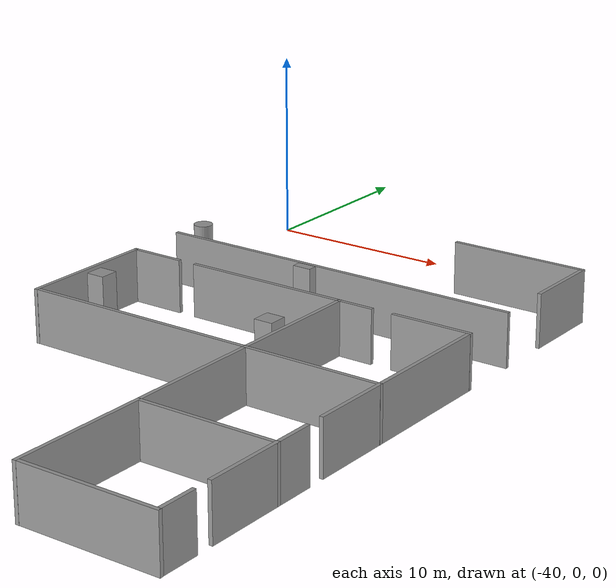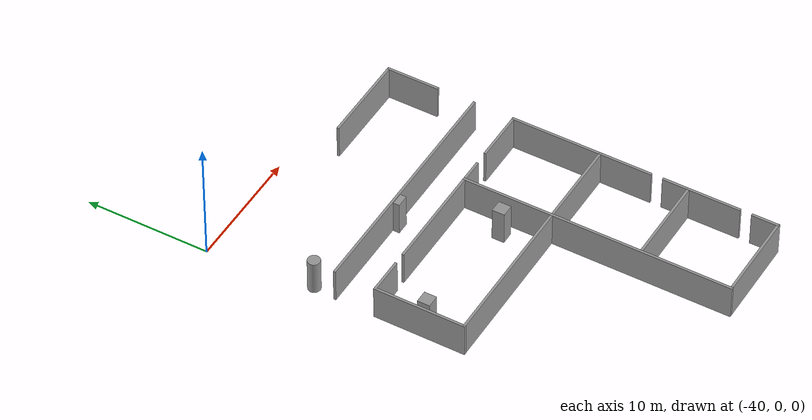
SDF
<sdf version="1.6">
 <world name="default">
  <model name="g1_clone_1_0_clone_0_0_0_clone_clone_0">
   <link name="link">
    <pose>6.64359 0.252719 1.4 0 -0 0</pose>
    <inertial>
     <mass>1</mass>
     <inertia><ixx>1</ixx><ixy>0</ixy><ixz>0</ixz><iyy>1</iyy><iyz>0</iyz><izz>1</izz></inertia>
    </inertial>
    <visual name="visual">
     <cast_shadows>0</cast_shadows>
     <geometry><box><size>20 0.2 2.8</size></box></geometry>
     <material>
      <script>
       <uri>model://grey_wall/materials/scripts</uri>
       <uri>model://grey_wall/materials/textures</uri>
       <name>vrc/grey_wall</name>
      </script>
      <ambient>1 1 1 1</ambient>
      <diffuse>1 1 1 1</diffuse>
      <specular>0 0 0 1</specular>
      <emissive>0 0 0 1</emissive>
      <shader type="vertex"><normal_map>__default__</normal_map></shader>
     </material>
    </visual>
    <collision name="collision">
     <geometry><box><size>20 0.2 2.8</size></box></geometry>
     <surface>
      <friction>
       <ode><mu>1</mu><mu2>1</mu2><fdir1>0 0 0</fdir1><slip1>0</slip1><slip2>0</slip2></ode>
       <torsional>
        <coefficient>1</coefficient>
        <patch_radius>0</patch_radius>
        <surface_radius>0</surface_radius>
        <use_patch_radius>1</use_patch_radius>
        <ode><slip>0</slip></ode>
       </torsional>
      </friction>
      <bounce><restitution_coefficient>0</restitution_coefficient><threshold>1e+06</threshold></bounce>
      <contact>
       <collide_without_contact>0</collide_without_contact>
       <collide_without_contact_bitmask>1</collide_without_contact_bitmask>
       <collide_bitmask>1</collide_bitmask>
       <ode>
        <soft_cfm>0</soft_cfm>
        <soft_erp>0.2</soft_erp>
        <kp>1e+13</kp>
        <kd>1</kd>
        <max_vel>0.01</max_vel>
        <min_depth>0</min_depth>
       </ode>
       <bullet>
        <split_impulse>1</split_impulse>
        <split_impulse_penetration_threshold>-0.01</split_impulse_penetration_threshold>
        <soft_cfm>0</soft_cfm>
        <soft_erp>0.2</soft_erp>
        <kp>1e+13</kp>
        <kd>1</kd>
       </bullet>
      </contact>
     </surface>
    </collision>
   </link>
   <static>1</static>
   <pose>-36.142 -10.5884 0 0 -0 0.000774</pose>
  </model>
  <model name="grey_wall_0_0_clone_clone">
   <link name="link">
    <pose>0 0 1.4 0 -0 0</pose>
    <inertial>
     <mass>1</mass>
     <inertia><ixx>1</ixx><ixy>0</ixy><ixz>0</ixz><iyy>1</iyy><iyz>0</iyz><izz>1</izz></inertia>
    </inertial>
    <visual name="visual">
     <cast_shadows>0</cast_shadows>
     <geometry><box><size>7.4 0.2 2.8</size></box></geometry>
     <material>
      <script>
       <uri>model://grey_wall/materials/scripts</uri>
       <uri>model://grey_wall/materials/textures</uri>
       <name>vrc/grey_wall</name>
      </script>
      <ambient>1 1 1 1</ambient>
      <diffuse>1 1 1 1</diffuse>
      <specular>0 0 0 1</specular>
      <emissive>0 0 0 1</emissive>
      <shader type="vertex"><normal_map>__default__</normal_map></shader>
     </material>
    </visual>
    <collision name="collision">
     <geometry><box><size>7.4 0.2 2.8</size></box></geometry>
     <surface>
      <friction>
       <ode><mu>1</mu><mu2>1</mu2><fdir1>0 0 0</fdir1><slip1>0</slip1><slip2>0</slip2></ode>
       <torsional>
        <coefficient>1</coefficient>
        <patch_radius>0</patch_radius>
        <surface_radius>0</surface_radius>
        <use_patch_radius>1</use_patch_radius>
        <ode><slip>0</slip></ode>
       </torsional>
      </friction>
      <bounce><restitution_coefficient>0</restitution_coefficient><threshold>1e+06</threshold></bounce>
      <contact>
       <collide_without_contact>0</collide_without_contact>
       <collide_without_contact_bitmask>1</collide_without_contact_bitmask>
       <collide_bitmask>1</collide_bitmask>
       <ode>
        <soft_cfm>0</soft_cfm>
        <soft_erp>0.2</soft_erp>
        <kp>1e+13</kp>
        <kd>1</kd>
        <max_vel>0.01</max_vel>
        <min_depth>0</min_depth>
       </ode>
       <bullet>
        <split_impulse>1</split_impulse>
        <split_impulse_penetration_threshold>-0.01</split_impulse_penetration_threshold>
        <soft_cfm>0</soft_cfm>
        <soft_erp>0.2</soft_erp>
        <kp>1e+13</kp>
        <kd>1</kd>
       </bullet>
      </contact>
     </surface>
    </collision>
   </link>
   <static>1</static>
   <pose>-23.1689 -3.11686 0 0 -0 0</pose>
  </model>
  <model name="g3_clone_clone_0_0_0_0_0_clone_0_clone_0_clone_2_clone_0_clone_0_clone_1_clone_clone">
   <link name="link">
    <pose>0.7232 0.251992 1.4 0 -0 0</pose>
    <inertial>
     <mass>1</mass>
     <inertia><ixx>1</ixx><ixy>0</ixy><ixz>0</ixz><iyy>1</iyy><iyz>0</iyz><izz>1</izz></inertia>
    </inertial>
    <visual name="visual">
     <cast_shadows>0</cast_shadows>
     <geometry><box><size>4.3 0.2 2.8</size></box></geometry>
     <material>
      <script>
       <uri>model://grey_wall/materials/scripts</uri>
       <uri>model://grey_wall/materials/textures</uri>
       <name>vrc/grey_wall</name>
      </script>
      <ambient>1 1 1 1</ambient>
      <diffuse>1 1 1 1</diffuse>
      <specular>0 0 0 1</specular>
      <emissive>0 0 0 1</emissive>
      <shader type="vertex"><normal_map>__default__</normal_map></shader>
     </material>
    </visual>
    <collision name="collision">
     <geometry><box><size>4.3 0.2 2.8</size></box></geometry>
     <surface>
      <friction>
       <ode><mu>1</mu><mu2>1</mu2><fdir1>0 0 0</fdir1><slip1>0</slip1><slip2>0</slip2></ode>
       <torsional>
        <coefficient>1</coefficient>
        <patch_radius>0</patch_radius>
        <surface_radius>0</surface_radius>
        <use_patch_radius>1</use_patch_radius>
        <ode><slip>0</slip></ode>
       </torsional>
      </friction>
      <bounce><restitution_coefficient>0</restitution_coefficient><threshold>1e+06</threshold></bounce>
      <contact>
       <collide_without_contact>0</collide_without_contact>
       <collide_without_contact_bitmask>1</collide_without_contact_bitmask>
       <collide_bitmask>1</collide_bitmask>
       <ode>
        <soft_cfm>0</soft_cfm>
        <soft_erp>0.2</soft_erp>
        <kp>1e+13</kp>
        <kd>1</kd>
        <max_vel>0.01</max_vel>
        <min_depth>0</min_depth>
       </ode>
       <bullet>
        <split_impulse>1</split_impulse>
        <split_impulse_penetration_threshold>-0.01</split_impulse_penetration_threshold>
        <soft_cfm>0</soft_cfm>
        <soft_erp>0.2</soft_erp>
        <kp>1e+13</kp>
        <kd>1</kd>
       </bullet>
      </contact>
     </surface>
    </collision>
   </link>
   <static>1</static>
   <pose>-19.8268 -4.45025 0 0 0 -1.57728</pose>
  </model>
  <model name="g2_clone_0_0_clone_clone_clone_0_clone">
   <link name="link">
    <pose>0 0 1.4 0 -0 0</pose>
    <inertial>
     <mass>1</mass>
     <inertia><ixx>1</ixx><ixy>0</ixy><ixz>0</ixz><iyy>1</iyy><iyz>0</iyz><izz>1</izz></inertia>
    </inertial>
    <visual name="visual">
     <cast_shadows>0</cast_shadows>
     <geometry><box><size>21.8 0.2 2.8</size></box></geometry>
     <material>
      <script>
       <uri>model://grey_wall/materials/scripts</uri>
       <uri>model://grey_wall/materials/textures</uri>
       <name>vrc/grey_wall</name>
      </script>
      <ambient>1 1 1 1</ambient>
      <diffuse>1 1 1 1</diffuse>
      <specular>0 0 0 1</specular>
      <emissive>0 0 0 1</emissive>
      <shader type="vertex"><normal_map>__default__</normal_map></shader>
     </material>
    </visual>
    <collision name="collision">
     <geometry><box><size>21.8 0.2 2.8</size></box></geometry>
     <surface>
      <friction>
       <ode><mu>1</mu><mu2>1</mu2><fdir1>0 0 0</fdir1><slip1>0</slip1><slip2>0</slip2></ode>
       <torsional>
        <coefficient>1</coefficient>
        <patch_radius>0</patch_radius>
        <surface_radius>0</surface_radius>
        <use_patch_radius>1</use_patch_radius>
        <ode><slip>0</slip></ode>
       </torsional>
      </friction>
      <bounce><restitution_coefficient>0</restitution_coefficient><threshold>1e+06</threshold></bounce>
      <contact>
       <collide_without_contact>0</collide_without_contact>
       <collide_without_contact_bitmask>1</collide_without_contact_bitmask>
       <collide_bitmask>1</collide_bitmask>
       <ode>
        <soft_cfm>0</soft_cfm>
        <soft_erp>0.2</soft_erp>
        <kp>1e+13</kp>
        <kd>1</kd>
        <max_vel>0.01</max_vel>
        <min_depth>0</min_depth>
       </ode>
       <bullet>
        <split_impulse>1</split_impulse>
        <split_impulse_penetration_threshold>-0.01</split_impulse_penetration_threshold>
        <soft_cfm>0</soft_cfm>
        <soft_erp>0.2</soft_erp>
        <kp>1e+13</kp>
        <kd>1</kd>
       </bullet>
      </contact>
     </surface>
    </collision>
   </link>
   <static>1</static>
   <pose>-26.8722 -24.4388 0 0 0 -1.57584</pose>
  </model>
  <model name="grey_wall_0_0_clone_clone_0">
   <link name="link">
    <pose>0 0 1.4 0 -0 0</pose>
    <inertial>
     <mass>1</mass>
     <inertia><ixx>1</ixx><ixy>0</ixy><ixz>0</ixz><iyy>1</iyy><iyz>0</iyz><izz>1</izz></inertia>
    </inertial>
    <visual name="visual">
     <cast_shadows>0</cast_shadows>
     <geometry><box><size>7.4 0.2 2.8</size></box></geometry>
     <material>
      <script>
       <uri>model://grey_wall/materials/scripts</uri>
       <uri>model://grey_wall/materials/textures</uri>
       <name>vrc/grey_wall</name>
      </script>
      <ambient>1 1 1 1</ambient>
      <diffuse>1 1 1 1</diffuse>
      <specular>0 0 0 1</specular>
      <emissive>0 0 0 1</emissive>
      <shader type="vertex"><normal_map>__default__</normal_map></shader>
     </material>
    </visual>
    <collision name="collision">
     <geometry><box><size>7.4 0.2 2.8</size></box></geometry>
     <surface>
      <friction>
       <ode><mu>1</mu><mu2>1</mu2><fdir1>0 0 0</fdir1><slip1>0</slip1><slip2>0</slip2></ode>
       <torsional>
        <coefficient>1</coefficient>
        <patch_radius>0</patch_radius>
        <surface_radius>0</surface_radius>
        <use_patch_radius>1</use_patch_radius>
        <ode><slip>0</slip></ode>
       </torsional>
      </friction>
      <bounce><restitution_coefficient>0</restitution_coefficient><threshold>1e+06</threshold></bounce>
      <contact>
       <collide_without_contact>0</collide_without_contact>
       <collide_without_contact_bitmask>1</collide_without_contact_bitmask>
       <collide_bitmask>1</collide_bitmask>
       <ode>
        <soft_cfm>0</soft_cfm>
        <soft_erp>0.2</soft_erp>
        <kp>1e+13</kp>
        <kd>1</kd>
        <max_vel>0.01</max_vel>
        <min_depth>0</min_depth>
       </ode>
       <bullet>
        <split_impulse>1</split_impulse>
        <split_impulse_penetration_threshold>-0.01</split_impulse_penetration_threshold>
        <soft_cfm>0</soft_cfm>
        <soft_erp>0.2</soft_erp>
        <kp>1e+13</kp>
        <kd>1</kd>
       </bullet>
      </contact>
     </surface>
    </collision>
   </link>
   <static>1</static>
   <pose>-23.2488 -20.8366 0 0 -0 0</pose>
  </model>
  <model name="g2_clone_0_0_clone_clone_clone_0_clone_0_0_clone">
   <link name="link">
    <pose>0 0 1.4 0 -0 0</pose>
    <inertial>
     <mass>1</mass>
     <inertia><ixx>1</ixx><ixy>0</ixy><ixz>0</ixz><iyy>1</iyy><iyz>0</iyz><izz>1</izz></inertia>
    </inertial>
    <visual name="visual">
     <cast_shadows>0</cast_shadows>
     <geometry><box><size>7.4 0.2 2.8</size></box></geometry>
     <material>
      <script>
       <uri>model://grey_wall/materials/scripts</uri>
       <uri>model://grey_wall/materials/textures</uri>
       <name>vrc/grey_wall</name>
      </script>
      <ambient>1 1 1 1</ambient>
      <diffuse>1 1 1 1</diffuse>
      <specular>0 0 0 1</specular>
      <emissive>0 0 0 1</emissive>
      <shader type="vertex"><normal_map>__default__</normal_map></shader>
     </material>
    </visual>
    <collision name="collision">
     <geometry><box><size>7.4 0.2 2.8</size></box></geometry>
     <surface>
      <friction>
       <ode><mu>1</mu><mu2>1</mu2><fdir1>0 0 0</fdir1><slip1>0</slip1><slip2>0</slip2></ode>
       <torsional>
        <coefficient>1</coefficient>
        <patch_radius>0</patch_radius>
        <surface_radius>0</surface_radius>
        <use_patch_radius>1</use_patch_radius>
        <ode><slip>0</slip></ode>
       </torsional>
      </friction>
      <bounce><restitution_coefficient>0</restitution_coefficient><threshold>1e+06</threshold></bounce>
      <contact>
       <collide_without_contact>0</collide_without_contact>
       <collide_without_contact_bitmask>1</collide_without_contact_bitmask>
       <collide_bitmask>1</collide_bitmask>
       <ode>
        <soft_cfm>0</soft_cfm>
        <soft_erp>0.2</soft_erp>
        <kp>1e+13</kp>
        <kd>1</kd>
        <max_vel>0.01</max_vel>
        <min_depth>0</min_depth>
       </ode>
       <bullet>
        <split_impulse>1</split_impulse>
        <split_impulse_penetration_threshold>-0.01</split_impulse_penetration_threshold>
        <soft_cfm>0</soft_cfm>
        <soft_erp>0.2</soft_erp>
        <kp>1e+13</kp>
        <kd>1</kd>
       </bullet>
      </contact>
     </surface>
    </collision>
   </link>
   <static>1</static>
   <pose>-39.4721 -17.2495 0 0 0 -1.57584</pose>
  </model>
  <model name="grey_wall_0_0_clone_clone_0_clone">
   <link name="link">
    <pose>0 0 1.4 0 -0 0</pose>
    <inertial>
     <mass>1</mass>
     <inertia><ixx>1</ixx><ixy>0</ixy><ixz>0</ixz><iyy>1</iyy><iyz>0</iyz><izz>1</izz></inertia>
    </inertial>
    <visual name="visual">
     <cast_shadows>0</cast_shadows>
     <geometry><box><size>7.4 0.2 2.8</size></box></geometry>
     <material>
      <script>
       <uri>model://grey_wall/materials/scripts</uri>
       <uri>model://grey_wall/materials/textures</uri>
       <name>vrc/grey_wall</name>
      </script>
      <ambient>1 1 1 1</ambient>
      <diffuse>1 1 1 1</diffuse>
      <specular>0 0 0 1</specular>
      <emissive>0 0 0 1</emissive>
      <shader type="vertex"><normal_map>__default__</normal_map></shader>
     </material>
    </visual>
    <collision name="collision">
     <geometry><box><size>7.4 0.2 2.8</size></box></geometry>
     <surface>
      <friction>
       <ode><mu>1</mu><mu2>1</mu2><fdir1>0 0 0</fdir1><slip1>0</slip1><slip2>0</slip2></ode>
       <torsional>
        <coefficient>1</coefficient>
        <patch_radius>0</patch_radius>
        <surface_radius>0</surface_radius>
        <use_patch_radius>1</use_patch_radius>
        <ode><slip>0</slip></ode>
       </torsional>
      </friction>
      <bounce><restitution_coefficient>0</restitution_coefficient><threshold>1e+06</threshold></bounce>
      <contact>
       <collide_without_contact>0</collide_without_contact>
       <collide_without_contact_bitmask>1</collide_without_contact_bitmask>
       <collide_bitmask>1</collide_bitmask>
       <ode>
        <soft_cfm>0</soft_cfm>
        <soft_erp>0.2</soft_erp>
        <kp>1e+13</kp>
        <kd>1</kd>
        <max_vel>0.01</max_vel>
        <min_depth>0</min_depth>
       </ode>
       <bullet>
        <split_impulse>1</split_impulse>
        <split_impulse_penetration_threshold>-0.01</split_impulse_penetration_threshold>
        <soft_cfm>0</soft_cfm>
        <soft_erp>0.2</soft_erp>
        <kp>1e+13</kp>
        <kd>1</kd>
       </bullet>
      </contact>
     </surface>
    </collision>
   </link>
   <static>1</static>
   <pose>-23.287 -28.0394 0 0 -0 0</pose>
  </model>
  <model name="grey_wall_0_0_clone_clone_0_clone_clone">
   <link name="link">
    <pose>0 0 1.4 0 -0 0</pose>
    <inertial>
     <mass>1</mass>
     <inertia><ixx>1</ixx><ixy>0</ixy><ixz>0</ixz><iyy>1</iyy><iyz>0</iyz><izz>1</izz></inertia>
    </inertial>
    <visual name="visual">
     <cast_shadows>0</cast_shadows>
     <geometry><box><size>7.4 0.2 2.8</size></box></geometry>
     <material>
      <script>
       <uri>model://grey_wall/materials/scripts</uri>
       <uri>model://grey_wall/materials/textures</uri>
       <name>vrc/grey_wall</name>
      </script>
      <ambient>1 1 1 1</ambient>
      <diffuse>1 1 1 1</diffuse>
      <specular>0 0 0 1</specular>
      <emissive>0 0 0 1</emissive>
      <shader type="vertex"><normal_map>__default__</normal_map></shader>
     </material>
    </visual>
    <collision name="collision">
     <geometry><box><size>7.4 0.2 2.8</size></box></geometry>
     <surface>
      <friction>
       <ode><mu>1</mu><mu2>1</mu2><fdir1>0 0 0</fdir1><slip1>0</slip1><slip2>0</slip2></ode>
       <torsional>
        <coefficient>1</coefficient>
        <patch_radius>0</patch_radius>
        <surface_radius>0</surface_radius>
        <use_patch_radius>1</use_patch_radius>
        <ode><slip>0</slip></ode>
       </torsional>
      </friction>
      <bounce><restitution_coefficient>0</restitution_coefficient><threshold>1e+06</threshold></bounce>
      <contact>
       <collide_without_contact>0</collide_without_contact>
       <collide_without_contact_bitmask>1</collide_without_contact_bitmask>
       <collide_bitmask>1</collide_bitmask>
       <ode>
        <soft_cfm>0</soft_cfm>
        <soft_erp>0.2</soft_erp>
        <kp>1e+13</kp>
        <kd>1</kd>
        <max_vel>0.01</max_vel>
        <min_depth>0</min_depth>
       </ode>
       <bullet>
        <split_impulse>1</split_impulse>
        <split_impulse_penetration_threshold>-0.01</split_impulse_penetration_threshold>
        <soft_cfm>0</soft_cfm>
        <soft_erp>0.2</soft_erp>
        <kp>1e+13</kp>
        <kd>1</kd>
       </bullet>
      </contact>
     </surface>
    </collision>
   </link>
   <static>1</static>
   <pose>-23.3185 -35.2346 0 0 -0 0</pose>
  </model>
  <model name="g1_clone_1_0_clone_0_0_0_clone_clone_0_clone_clone_0_1">
   <link name="link">
    <pose>10.2401 0.265308 1.4 0 -0 0</pose>
    <inertial>
     <mass>1</mass>
     <inertia><ixx>1</ixx><ixy>0</ixy><ixz>0</ixz><iyy>1</iyy><iyz>0</iyz><izz>1</izz></inertia>
    </inertial>
    <visual name="visual">
     <cast_shadows>0</cast_shadows>
     <geometry><box><size>12.8 0.2 2.8</size></box></geometry>
     <material>
      <script>
       <uri>model://grey_wall/materials/scripts</uri>
       <uri>model://grey_wall/materials/textures</uri>
       <name>vrc/grey_wall</name>
      </script>
      <ambient>1 1 1 1</ambient>
      <diffuse>1 1 1 1</diffuse>
      <specular>0 0 0 1</specular>
      <emissive>0 0 0 1</emissive>
      <shader type="vertex"><normal_map>__default__</normal_map></shader>
     </material>
    </visual>
    <collision name="collision">
     <geometry><box><size>12.8 0.2 2.8</size></box></geometry>
     <surface>
      <friction>
       <ode><mu>1</mu><mu2>1</mu2><fdir1>0 0 0</fdir1><slip1>0</slip1><slip2>0</slip2></ode>
       <torsional>
        <coefficient>1</coefficient>
        <patch_radius>0</patch_radius>
        <surface_radius>0</surface_radius>
        <use_patch_radius>1</use_patch_radius>
        <ode><slip>0</slip></ode>
       </torsional>
      </friction>
      <bounce><restitution_coefficient>0</restitution_coefficient><threshold>1e+06</threshold></bounce>
      <contact>
       <collide_without_contact>0</collide_without_contact>
       <collide_without_contact_bitmask>1</collide_without_contact_bitmask>
       <collide_bitmask>1</collide_bitmask>
       <ode>
        <soft_cfm>0</soft_cfm>
        <soft_erp>0.2</soft_erp>
        <kp>1e+13</kp>
        <kd>1</kd>
        <max_vel>0.01</max_vel>
        <min_depth>0</min_depth>
       </ode>
       <bullet>
        <split_impulse>1</split_impulse>
        <split_impulse_penetration_threshold>-0.01</split_impulse_penetration_threshold>
        <soft_cfm>0</soft_cfm>
        <soft_erp>0.2</soft_erp>
        <kp>1e+13</kp>
        <kd>1</kd>
       </bullet>
      </contact>
     </surface>
    </collision>
   </link>
   <static>1</static>
   <pose>-43.4022 -21.1085 0 0 -0 0.000774</pose>
  </model>
  <model name="grey_wall_0_0_clone_clone_0_clone_0_0">
   <link name="link">
    <pose>0 0 1.4 0 -0 0</pose>
    <inertial>
     <mass>1</mass>
     <inertia><ixx>1</ixx><ixy>0</ixy><ixz>0</ixz><iyy>1</iyy><iyz>0</iyz><izz>1</izz></inertia>
    </inertial>
    <visual name="visual">
     <cast_shadows>0</cast_shadows>
     <geometry><box><size>2 0.2 2.8</size></box></geometry>
     <material>
      <script>
       <uri>model://grey_wall/materials/scripts</uri>
       <uri>model://grey_wall/materials/textures</uri>
       <name>vrc/grey_wall</name>
      </script>
      <ambient>1 1 1 1</ambient>
      <diffuse>1 1 1 1</diffuse>
      <specular>0 0 0 1</specular>
      <emissive>0 0 0 1</emissive>
      <shader type="vertex"><normal_map>__default__</normal_map></shader>
     </material>
    </visual>
    <collision name="collision">
     <geometry><box><size>2 0.2 2.8</size></box></geometry>
     <surface>
      <friction>
       <ode><mu>1</mu><mu2>1</mu2><fdir1>0 0 0</fdir1><slip1>0</slip1><slip2>0</slip2></ode>
       <torsional>
        <coefficient>1</coefficient>
        <patch_radius>0</patch_radius>
        <surface_radius>0</surface_radius>
        <use_patch_radius>1</use_patch_radius>
        <ode><slip>0</slip></ode>
       </torsional>
      </friction>
      <bounce><restitution_coefficient>0</restitution_coefficient><threshold>1e+06</threshold></bounce>
      <contact>
       <collide_without_contact>0</collide_without_contact>
       <collide_without_contact_bitmask>1</collide_without_contact_bitmask>
       <collide_bitmask>1</collide_bitmask>
       <ode>
        <soft_cfm>0</soft_cfm>
        <soft_erp>0.2</soft_erp>
        <kp>1e+13</kp>
        <kd>1</kd>
        <max_vel>0.01</max_vel>
        <min_depth>0</min_depth>
       </ode>
       <bullet>
        <split_impulse>1</split_impulse>
        <split_impulse_penetration_threshold>-0.01</split_impulse_penetration_threshold>
        <soft_cfm>0</soft_cfm>
        <soft_erp>0.2</soft_erp>
        <kp>1e+13</kp>
        <kd>1</kd>
       </bullet>
      </contact>
     </surface>
    </collision>
   </link>
   <static>1</static>
   <pose>-25.9179 -13.6439 0 0 -0 0</pose>
  </model>
  <model name="grey_wall_0_0_clone_clone_0_clone_0_0_clone_0">
   <link name="link">
    <pose>0 0 1.4 0 -0 0</pose>
    <inertial>
     <mass>1</mass>
     <inertia><ixx>1</ixx><ixy>0</ixy><ixz>0</ixz><iyy>1</iyy><iyz>0</iyz><izz>1</izz></inertia>
    </inertial>
    <visual name="visual">
     <cast_shadows>0</cast_shadows>
     <geometry><box><size>4.3 0.2 2.8</size></box></geometry>
     <material>
      <script>
       <uri>model://grey_wall/materials/scripts</uri>
       <uri>model://grey_wall/materials/textures</uri>
       <name>vrc/grey_wall</name>
      </script>
      <ambient>1 1 1 1</ambient>
      <diffuse>1 1 1 1</diffuse>
      <specular>0 0 0 1</specular>
      <emissive>0 0 0 1</emissive>
      <shader type="vertex"><normal_map>__default__</normal_map></shader>
     </material>
    </visual>
    <collision name="collision">
     <geometry><box><size>4.3 0.2 2.8</size></box></geometry>
     <surface>
      <friction>
       <ode><mu>1</mu><mu2>1</mu2><fdir1>0 0 0</fdir1><slip1>0</slip1><slip2>0</slip2></ode>
       <torsional>
        <coefficient>1</coefficient>
        <patch_radius>0</patch_radius>
        <surface_radius>0</surface_radius>
        <use_patch_radius>1</use_patch_radius>
        <ode><slip>0</slip></ode>
       </torsional>
      </friction>
      <bounce><restitution_coefficient>0</restitution_coefficient><threshold>1e+06</threshold></bounce>
      <contact>
       <collide_without_contact>0</collide_without_contact>
       <collide_without_contact_bitmask>1</collide_without_contact_bitmask>
       <collide_bitmask>1</collide_bitmask>
       <ode>
        <soft_cfm>0</soft_cfm>
        <soft_erp>0.2</soft_erp>
        <kp>1e+13</kp>
        <kd>1</kd>
        <max_vel>0.01</max_vel>
        <min_depth>0</min_depth>
       </ode>
       <bullet>
        <split_impulse>1</split_impulse>
        <split_impulse_penetration_threshold>-0.01</split_impulse_penetration_threshold>
        <soft_cfm>0</soft_cfm>
        <soft_erp>0.2</soft_erp>
        <kp>1e+13</kp>
        <kd>1</kd>
       </bullet>
      </contact>
     </surface>
    </collision>
   </link>
   <static>1</static>
   <pose>-21.6611 -13.6302 0 0 -0 0</pose>
  </model>
  <model name="g3_clone_clone_0_0_0_0_0_clone_0_clone_0_clone_2_clone_0_clone_0_clone_1_clone_clone_clone">
   <link name="link">
    <pose>0.7232 0.251992 1.4 0 -0 0</pose>
    <inertial>
     <mass>1</mass>
     <inertia><ixx>1</ixx><ixy>0</ixy><ixz>0</ixz><iyy>1</iyy><iyz>0</iyz><izz>1</izz></inertia>
    </inertial>
    <visual name="visual">
     <cast_shadows>0</cast_shadows>
     <geometry><box><size>4.3 0.2 2.8</size></box></geometry>
     <material>
      <script>
       <uri>model://grey_wall/materials/scripts</uri>
       <uri>model://grey_wall/materials/textures</uri>
       <name>vrc/grey_wall</name>
      </script>
      <ambient>1 1 1 1</ambient>
      <diffuse>1 1 1 1</diffuse>
      <specular>0 0 0 1</specular>
      <emissive>0 0 0 1</emissive>
      <shader type="vertex"><normal_map>__default__</normal_map></shader>
     </material>
    </visual>
    <collision name="collision">
     <geometry><box><size>4.3 0.2 2.8</size></box></geometry>
     <surface>
      <friction>
       <ode><mu>1</mu><mu2>1</mu2><fdir1>0 0 0</fdir1><slip1>0</slip1><slip2>0</slip2></ode>
       <torsional>
        <coefficient>1</coefficient>
        <patch_radius>0</patch_radius>
        <surface_radius>0</surface_radius>
        <use_patch_radius>1</use_patch_radius>
        <ode><slip>0</slip></ode>
       </torsional>
      </friction>
      <bounce><restitution_coefficient>0</restitution_coefficient><threshold>1e+06</threshold></bounce>
      <contact>
       <collide_without_contact>0</collide_without_contact>
       <collide_without_contact_bitmask>1</collide_without_contact_bitmask>
       <collide_bitmask>1</collide_bitmask>
       <ode>
        <soft_cfm>0</soft_cfm>
        <soft_erp>0.2</soft_erp>
        <kp>1e+13</kp>
        <kd>1</kd>
        <max_vel>0.01</max_vel>
        <min_depth>0</min_depth>
       </ode>
       <bullet>
        <split_impulse>1</split_impulse>
        <split_impulse_penetration_threshold>-0.01</split_impulse_penetration_threshold>
        <soft_cfm>0</soft_cfm>
        <soft_erp>0.2</soft_erp>
        <kp>1e+13</kp>
        <kd>1</kd>
       </bullet>
      </contact>
     </surface>
    </collision>
   </link>
   <static>1</static>
   <pose>-19.9133 -22.1683 0 0 0 -1.57728</pose>
  </model>
  <model name="g3_clone_clone_0_clone_0_0_0_0_0_0_clone_clone_clone_0_clone_0_clone_1_0_clone_2_clone_clone_clone">
   <link name="link">
    <pose>0.277892 -0.062462 1.4 0 -0 0</pose>
    <inertial>
     <mass>1</mass>
     <inertia><ixx>1</ixx><ixy>0</ixy><ixz>0</ixz><iyy>1</iyy><iyz>0</iyz><izz>1</izz></inertia>
    </inertial>
    <visual name="visual">
     <cast_shadows>0</cast_shadows>
     <geometry><box><size>2.2 0.2 2.8</size></box></geometry>
     <material>
      <script>
       <uri>model://grey_wall/materials/scripts</uri>
       <uri>model://grey_wall/materials/textures</uri>
       <name>vrc/grey_wall</name>
      </script>
      <ambient>1 1 1 1</ambient>
      <diffuse>1 1 1 1</diffuse>
      <specular>0 0 0 1</specular>
      <emissive>0 0 0 1</emissive>
      <shader type="vertex"><normal_map>__default__</normal_map></shader>
     </material>
    </visual>
    <collision name="collision">
     <geometry><box><size>2.2 0.2 2.8</size></box></geometry>
     <surface>
      <friction>
       <ode><mu>1</mu><mu2>1</mu2><fdir1>0 0 0</fdir1><slip1>0</slip1><slip2>0</slip2></ode>
       <torsional>
        <coefficient>1</coefficient>
        <patch_radius>0</patch_radius>
        <surface_radius>0</surface_radius>
        <use_patch_radius>1</use_patch_radius>
        <ode><slip>0</slip></ode>
       </torsional>
      </friction>
      <bounce><restitution_coefficient>0</restitution_coefficient><threshold>1e+06</threshold></bounce>
      <contact>
       <collide_without_contact>0</collide_without_contact>
       <collide_without_contact_bitmask>1</collide_without_contact_bitmask>
       <collide_bitmask>1</collide_bitmask>
       <ode>
        <soft_cfm>0</soft_cfm>
        <soft_erp>0.2</soft_erp>
        <kp>1e+13</kp>
        <kd>1</kd>
        <max_vel>0.01</max_vel>
        <min_depth>0</min_depth>
       </ode>
       <bullet>
        <split_impulse>1</split_impulse>
        <split_impulse_penetration_threshold>-0.01</split_impulse_penetration_threshold>
        <soft_cfm>0</soft_cfm>
        <soft_erp>0.2</soft_erp>
        <kp>1e+13</kp>
        <kd>1</kd>
       </bullet>
      </contact>
     </surface>
    </collision>
   </link>
   <static>1</static>
   <pose>-19.6194 -26.7608 0 0 0 -1.57614</pose>
  </model>
  <model name="g2_clone_0_0_clone_clone_clone_0_clone_0_0_clone_clone_clone">
   <link name="link">
    <pose>0 0 1.4 0 -0 0</pose>
    <inertial>
     <mass>1</mass>
     <inertia><ixx>1</ixx><ixy>0</ixy><ixz>0</ixz><iyy>1</iyy><iyz>0</iyz><izz>1</izz></inertia>
    </inertial>
    <visual name="visual">
     <cast_shadows>0</cast_shadows>
     <geometry><box><size>7.4 0.2 2.8</size></box></geometry>
     <material>
      <script>
       <uri>model://grey_wall/materials/scripts</uri>
       <uri>model://grey_wall/materials/textures</uri>
       <name>vrc/grey_wall</name>
      </script>
      <ambient>1 1 1 1</ambient>
      <diffuse>1 1 1 1</diffuse>
      <specular>0 0 0 1</specular>
      <emissive>0 0 0 1</emissive>
      <shader type="vertex"><normal_map>__default__</normal_map></shader>
     </material>
    </visual>
    <collision name="collision">
     <geometry><box><size>7.4 0.2 2.8</size></box></geometry>
     <surface>
      <friction>
       <ode><mu>1</mu><mu2>1</mu2><fdir1>0 0 0</fdir1><slip1>0</slip1><slip2>0</slip2></ode>
       <torsional>
        <coefficient>1</coefficient>
        <patch_radius>0</patch_radius>
        <surface_radius>0</surface_radius>
        <use_patch_radius>1</use_patch_radius>
        <ode><slip>0</slip></ode>
       </torsional>
      </friction>
      <bounce><restitution_coefficient>0</restitution_coefficient><threshold>1e+06</threshold></bounce>
      <contact>
       <collide_without_contact>0</collide_without_contact>
       <collide_without_contact_bitmask>1</collide_without_contact_bitmask>
       <collide_bitmask>1</collide_bitmask>
       <ode>
        <soft_cfm>0</soft_cfm>
        <soft_erp>0.2</soft_erp>
        <kp>1e+13</kp>
        <kd>1</kd>
        <max_vel>0.01</max_vel>
        <min_depth>0</min_depth>
       </ode>
       <bullet>
        <split_impulse>1</split_impulse>
        <split_impulse_penetration_threshold>-0.01</split_impulse_penetration_threshold>
        <soft_cfm>0</soft_cfm>
        <soft_erp>0.2</soft_erp>
        <kp>1e+13</kp>
        <kd>1</kd>
       </bullet>
      </contact>
     </surface>
    </collision>
   </link>
   <static>1</static>
   <pose>-19.6321 -17.2402 0 0 0 -1.57584</pose>
  </model>
  <model name="g3_clone_clone_0_0_0_0_0_clone_0_clone_0_clone_2_clone_0_clone_0_clone_1_clone_clone_clone_0">
   <link name="link">
    <pose>0.7232 0.251992 1.4 0 -0 0</pose>
    <inertial>
     <mass>1</mass>
     <inertia><ixx>1</ixx><ixy>0</ixy><ixz>0</ixz><iyy>1</iyy><iyz>0</iyz><izz>1</izz></inertia>
    </inertial>
    <visual name="visual">
     <cast_shadows>0</cast_shadows>
     <geometry><box><size>4.3 0.2 2.8</size></box></geometry>
     <material>
      <script>
       <uri>model://grey_wall/materials/scripts</uri>
       <uri>model://grey_wall/materials/textures</uri>
       <name>vrc/grey_wall</name>
      </script>
      <ambient>1 1 1 1</ambient>
      <diffuse>1 1 1 1</diffuse>
      <specular>0 0 0 1</specular>
      <emissive>0 0 0 1</emissive>
      <shader type="vertex"><normal_map>__default__</normal_map></shader>
     </material>
    </visual>
    <collision name="collision">
     <geometry><box><size>4.3 0.2 2.8</size></box></geometry>
     <surface>
      <friction>
       <ode><mu>1</mu><mu2>1</mu2><fdir1>0 0 0</fdir1><slip1>0</slip1><slip2>0</slip2></ode>
       <torsional>
        <coefficient>1</coefficient>
        <patch_radius>0</patch_radius>
        <surface_radius>0</surface_radius>
        <use_patch_radius>1</use_patch_radius>
        <ode><slip>0</slip></ode>
       </torsional>
      </friction>
      <bounce><restitution_coefficient>0</restitution_coefficient><threshold>1e+06</threshold></bounce>
      <contact>
       <collide_without_contact>0</collide_without_contact>
       <collide_without_contact_bitmask>1</collide_without_contact_bitmask>
       <collide_bitmask>1</collide_bitmask>
       <ode>
        <soft_cfm>0</soft_cfm>
        <soft_erp>0.2</soft_erp>
        <kp>1e+13</kp>
        <kd>1</kd>
        <max_vel>0.01</max_vel>
        <min_depth>0</min_depth>
       </ode>
       <bullet>
        <split_impulse>1</split_impulse>
        <split_impulse_penetration_threshold>-0.01</split_impulse_penetration_threshold>
        <soft_cfm>0</soft_cfm>
        <soft_erp>0.2</soft_erp>
        <kp>1e+13</kp>
        <kd>1</kd>
       </bullet>
      </contact>
     </surface>
    </collision>
   </link>
   <static>1</static>
   <pose>-19.9501 -29.3658 0 0 0 -1.57728</pose>
  </model>
  <model name="g3_clone_clone_0_clone_0_0_0_0_0_0_clone_clone_clone_0_clone_0_clone_1_0_clone_2_clone_clone_clone_0">
   <link name="link">
    <pose>0.277892 -0.062462 1.4 0 -0 0</pose>
    <inertial>
     <mass>1</mass>
     <inertia><ixx>1</ixx><ixy>0</ixy><ixz>0</ixz><iyy>1</iyy><iyz>0</iyz><izz>1</izz></inertia>
    </inertial>
    <visual name="visual">
     <cast_shadows>0</cast_shadows>
     <geometry><box><size>2.2 0.2 2.8</size></box></geometry>
     <material>
      <script>
       <uri>model://grey_wall/materials/scripts</uri>
       <uri>model://grey_wall/materials/textures</uri>
       <name>vrc/grey_wall</name>
      </script>
      <ambient>1 1 1 1</ambient>
      <diffuse>1 1 1 1</diffuse>
      <specular>0 0 0 1</specular>
      <emissive>0 0 0 1</emissive>
      <shader type="vertex"><normal_map>__default__</normal_map></shader>
     </material>
    </visual>
    <collision name="collision">
     <geometry><box><size>2.2 0.2 2.8</size></box></geometry>
     <surface>
      <friction>
       <ode><mu>1</mu><mu2>1</mu2><fdir1>0 0 0</fdir1><slip1>0</slip1><slip2>0</slip2></ode>
       <torsional>
        <coefficient>1</coefficient>
        <patch_radius>0</patch_radius>
        <surface_radius>0</surface_radius>
        <use_patch_radius>1</use_patch_radius>
        <ode><slip>0</slip></ode>
       </torsional>
      </friction>
      <bounce><restitution_coefficient>0</restitution_coefficient><threshold>1e+06</threshold></bounce>
      <contact>
       <collide_without_contact>0</collide_without_contact>
       <collide_without_contact_bitmask>1</collide_without_contact_bitmask>
       <collide_bitmask>1</collide_bitmask>
       <ode>
        <soft_cfm>0</soft_cfm>
        <soft_erp>0.2</soft_erp>
        <kp>1e+13</kp>
        <kd>1</kd>
        <max_vel>0.01</max_vel>
        <min_depth>0</min_depth>
       </ode>
       <bullet>
        <split_impulse>1</split_impulse>
        <split_impulse_penetration_threshold>-0.01</split_impulse_penetration_threshold>
        <soft_cfm>0</soft_cfm>
        <soft_erp>0.2</soft_erp>
        <kp>1e+13</kp>
        <kd>1</kd>
       </bullet>
      </contact>
     </surface>
    </collision>
   </link>
   <static>1</static>
   <pose>-19.667 -33.9519 0 0 0 -1.57614</pose>
  </model>
  <model name="g1_clone_1_0_clone_0_0_0_clone_clone_0_clone_clone_0_1_clone_clone_0">
   <link name="link">
    <pose>11.9262 1.88852 1.4 0 -0 0</pose>
    <inertial>
     <mass>1</mass>
     <inertia><ixx>1</ixx><ixy>0</ixy><ixz>0</ixz><iyy>1</iyy><iyz>0</iyz><izz>1</izz></inertia>
    </inertial>
    <visual name="visual">
     <cast_shadows>0</cast_shadows>
     <geometry><box><size>8.9 0.2 2.8</size></box></geometry>
     <material>
      <script>
       <uri>model://grey_wall/materials/scripts</uri>
       <uri>model://grey_wall/materials/textures</uri>
       <name>vrc/grey_wall</name>
      </script>
      <ambient>1 1 1 1</ambient>
      <diffuse>1 1 1 1</diffuse>
      <specular>0 0 0 1</specular>
      <emissive>0 0 0 1</emissive>
      <shader type="vertex"><normal_map>__default__</normal_map></shader>
     </material>
    </visual>
    <collision name="collision">
     <geometry><box><size>8.9 0.2 2.8</size></box></geometry>
     <surface>
      <friction>
       <ode><mu>1</mu><mu2>1</mu2><fdir1>0 0 0</fdir1><slip1>0</slip1><slip2>0</slip2></ode>
       <torsional>
        <coefficient>1</coefficient>
        <patch_radius>0</patch_radius>
        <surface_radius>0</surface_radius>
        <use_patch_radius>1</use_patch_radius>
        <ode><slip>0</slip></ode>
       </torsional>
      </friction>
      <bounce><restitution_coefficient>0</restitution_coefficient><threshold>1e+06</threshold></bounce>
      <contact>
       <collide_without_contact>0</collide_without_contact>
       <collide_without_contact_bitmask>1</collide_without_contact_bitmask>
       <collide_bitmask>1</collide_bitmask>
       <ode>
        <soft_cfm>0</soft_cfm>
        <soft_erp>0.2</soft_erp>
        <kp>1e+13</kp>
        <kd>1</kd>
        <max_vel>0.01</max_vel>
        <min_depth>0</min_depth>
       </ode>
       <bullet>
        <split_impulse>1</split_impulse>
        <split_impulse_penetration_threshold>-0.01</split_impulse_penetration_threshold>
        <soft_cfm>0</soft_cfm>
        <soft_erp>0.2</soft_erp>
        <kp>1e+13</kp>
        <kd>1</kd>
       </bullet>
      </contact>
     </surface>
    </collision>
   </link>
   <static>1</static>
   <pose>-43.1037 -15.5422 0 0 -0 0.000774</pose>
  </model>
  <model name="g1_clone_1_0_clone_0_0_0_clone_clone_0_clone_clone_0_1_clone_clone_0_clone_0">
   <link name="link">
    <pose>11.9262 1.88852 1.4 0 -0 0</pose>
    <inertial>
     <mass>1</mass>
     <inertia><ixx>1</ixx><ixy>0</ixy><ixz>0</ixz><iyy>1</iyy><iyz>0</iyz><izz>1</izz></inertia>
    </inertial>
    <visual name="visual">
     <cast_shadows>0</cast_shadows>
     <geometry><box><size>3 0.2 2.8</size></box></geometry>
     <material>
      <script>
       <uri>model://grey_wall/materials/scripts</uri>
       <uri>model://grey_wall/materials/textures</uri>
       <name>vrc/grey_wall</name>
      </script>
      <ambient>1 1 1 1</ambient>
      <diffuse>1 1 1 1</diffuse>
      <specular>0 0 0 1</specular>
      <emissive>0 0 0 1</emissive>
      <shader type="vertex"><normal_map>__default__</normal_map></shader>
     </material>
    </visual>
    <collision name="collision">
     <geometry><box><size>3 0.2 2.8</size></box></geometry>
     <surface>
      <friction>
       <ode><mu>1</mu><mu2>1</mu2><fdir1>0 0 0</fdir1><slip1>0</slip1><slip2>0</slip2></ode>
       <torsional>
        <coefficient>1</coefficient>
        <patch_radius>0</patch_radius>
        <surface_radius>0</surface_radius>
        <use_patch_radius>1</use_patch_radius>
        <ode><slip>0</slip></ode>
       </torsional>
      </friction>
      <bounce><restitution_coefficient>0</restitution_coefficient><threshold>1e+06</threshold></bounce>
      <contact>
       <collide_without_contact>0</collide_without_contact>
       <collide_without_contact_bitmask>1</collide_without_contact_bitmask>
       <collide_bitmask>1</collide_bitmask>
       <ode>
        <soft_cfm>0</soft_cfm>
        <soft_erp>0.2</soft_erp>
        <kp>1e+13</kp>
        <kd>1</kd>
        <max_vel>0.01</max_vel>
        <min_depth>0</min_depth>
       </ode>
       <bullet>
        <split_impulse>1</split_impulse>
        <split_impulse_penetration_threshold>-0.01</split_impulse_penetration_threshold>
        <soft_cfm>0</soft_cfm>
        <soft_erp>0.2</soft_erp>
        <kp>1e+13</kp>
        <kd>1</kd>
       </bullet>
      </contact>
     </surface>
    </collision>
   </link>
   <static>1</static>
   <pose>-49.9769 -15.5488 0 0 -0 0.000774</pose>
  </model>
  <model name="unit_cylinder_0_1_0_clone">
   <link name="link">
    <pose>0.876728 0.324661 0.817505 0 -0 0</pose>
    <inertial>
     <mass>1</mass>
     <inertia><ixx>0.145833</ixx><ixy>0</ixy><ixz>0</ixz><iyy>0.145833</iyy><iyz>0</iyz><izz>0.125</izz></inertia>
    </inertial>
    <visual name="visual">
     <geometry><cylinder><radius>0.5</radius><length>2.8</length></cylinder></geometry>
     <material>
      <script><name>Gazebo/Grey</name><uri>file://media/materials/scripts/gazebo.material</uri></script>
      <ambient>0.3 0.3 0.3 1</ambient>
      <diffuse>0.7 0.7 0.7 1</diffuse>
      <specular>0.01 0.01 0.01 1</specular>
      <emissive>0 0 0 1</emissive>
      <shader type="vertex"><normal_map>__default__</normal_map></shader>
     </material>
    </visual>
    <collision name="collision">
     <geometry><cylinder><radius>0.5</radius><length>2.8</length></cylinder></geometry>
     <surface>
      <friction>
       <ode><mu>1</mu><mu2>1</mu2><fdir1>0 0 0</fdir1><slip1>0</slip1><slip2>0</slip2></ode>
       <torsional>
        <coefficient>1</coefficient>
        <patch_radius>0</patch_radius>
        <surface_radius>0</surface_radius>
        <use_patch_radius>1</use_patch_radius>
        <ode><slip>0</slip></ode>
       </torsional>
      </friction>
      <bounce><restitution_coefficient>0</restitution_coefficient><threshold>1e+06</threshold></bounce>
      <contact>
       <collide_without_contact>0</collide_without_contact>
       <collide_without_contact_bitmask>1</collide_without_contact_bitmask>
       <collide_bitmask>1</collide_bitmask>
       <ode>
        <soft_cfm>0</soft_cfm>
        <soft_erp>0.2</soft_erp>
        <kp>1e+13</kp>
        <kd>1</kd>
        <max_vel>0.01</max_vel>
        <min_depth>0</min_depth>
       </ode>
       <bullet>
        <split_impulse>1</split_impulse>
        <split_impulse_penetration_threshold>-0.01</split_impulse_penetration_threshold>
        <soft_cfm>0</soft_cfm>
        <soft_erp>0.2</soft_erp>
        <kp>1e+13</kp>
        <kd>1</kd>
       </bullet>
      </contact>
     </surface>
    </collision>
   </link>
   <static>0</static>
   <pose>-40.1068 -8.82331 0.582488 0 0 -4.9e-05</pose>
  </model>
  <model name="unit_box_0_0">
   <link name="link">
    <pose>-5.77239 -0.379822 3.84331 0 -0 0</pose>
    <inertial>
     <mass>1</mass>
     <inertia>
      <ixx>0.166667</ixx>
      <ixy>0</ixy>
      <ixz>0</ixz>
      <iyy>0.166667</iyy>
      <iyz>0</iyz>
      <izz>0.166667</izz>
     </inertia>
    </inertial>
    <visual name="visual">
     <geometry><box><size>1 1 2.8</size></box></geometry>
     <material>
      <script><name>Gazebo/Grey</name><uri>file://media/materials/scripts/gazebo.material</uri></script>
      <ambient>0.3 0.3 0.3 1</ambient>
      <diffuse>0.7 0.7 0.7 1</diffuse>
      <specular>0.01 0.01 0.01 1</specular>
      <emissive>0 0 0 1</emissive>
      <shader type="vertex"><normal_map>__default__</normal_map></shader>
     </material>
    </visual>
    <collision name="collision">
     <geometry><box><size>1 1 2.8</size></box></geometry>
     <surface>
      <friction>
       <ode><mu>1</mu><mu2>1</mu2><fdir1>0 0 0</fdir1><slip1>0</slip1><slip2>0</slip2></ode>
       <torsional>
        <coefficient>1</coefficient>
        <patch_radius>0</patch_radius>
        <surface_radius>0</surface_radius>
        <use_patch_radius>1</use_patch_radius>
        <ode><slip>0</slip></ode>
       </torsional>
      </friction>
      <bounce><restitution_coefficient>0</restitution_coefficient><threshold>1e+06</threshold></bounce>
      <contact>
       <collide_without_contact>0</collide_without_contact>
       <collide_without_contact_bitmask>1</collide_without_contact_bitmask>
       <collide_bitmask>1</collide_bitmask>
       <ode>
        <soft_cfm>0</soft_cfm>
        <soft_erp>0.2</soft_erp>
        <kp>1e+13</kp>
        <kd>1</kd>
        <max_vel>0.01</max_vel>
        <min_depth>0</min_depth>
       </ode>
       <bullet>
        <split_impulse>1</split_impulse>
        <split_impulse_penetration_threshold>-0.01</split_impulse_penetration_threshold>
        <soft_cfm>0</soft_cfm>
        <soft_erp>0.2</soft_erp>
        <kp>1e+13</kp>
        <kd>1</kd>
       </bullet>
      </contact>
     </surface>
    </collision>
   </link>
   <static>0</static>
   <pose>-22.3232 -17.0442 -2.44331 1e-06 1e-06 0.000544</pose>
  </model>
  <model name="unit_box_0_0_clone">
   <link name="link">
    <pose>-5.77239 -0.379822 3.84331 0 -0 0</pose>
    <inertial>
     <mass>1</mass>
     <inertia>
      <ixx>0.166667</ixx>
      <ixy>0</ixy>
      <ixz>0</ixz>
      <iyy>0.166667</iyy>
      <iyz>0</iyz>
      <izz>0.166667</izz>
     </inertia>
    </inertial>
    <visual name="visual">
     <geometry><box><size>1 1 2.8</size></box></geometry>
     <material>
      <script><name>Gazebo/Grey</name><uri>file://media/materials/scripts/gazebo.material</uri></script>
      <ambient>0.3 0.3 0.3 1</ambient>
      <diffuse>0.7 0.7 0.7 1</diffuse>
      <specular>0.01 0.01 0.01 1</specular>
      <emissive>0 0 0 1</emissive>
      <shader type="vertex"><normal_map>__default__</normal_map></shader>
     </material>
    </visual>
    <collision name="collision">
     <geometry><box><size>1 1 2.8</size></box></geometry>
     <surface>
      <friction>
       <ode><mu>1</mu><mu2>1</mu2><fdir1>0 0 0</fdir1><slip1>0</slip1><slip2>0</slip2></ode>
       <torsional>
        <coefficient>1</coefficient>
        <patch_radius>0</patch_radius>
        <surface_radius>0</surface_radius>
        <use_patch_radius>1</use_patch_radius>
        <ode><slip>0</slip></ode>
       </torsional>
      </friction>
      <bounce><restitution_coefficient>0</restitution_coefficient><threshold>1e+06</threshold></bounce>
      <contact>
       <collide_without_contact>0</collide_without_contact>
       <collide_without_contact_bitmask>1</collide_without_contact_bitmask>
       <collide_bitmask>1</collide_bitmask>
       <ode>
        <soft_cfm>0</soft_cfm>
        <soft_erp>0.2</soft_erp>
        <kp>1e+13</kp>
        <kd>1</kd>
        <max_vel>0.01</max_vel>
        <min_depth>0</min_depth>
       </ode>
       <bullet>
        <split_impulse>1</split_impulse>
        <split_impulse_penetration_threshold>-0.01</split_impulse_penetration_threshold>
        <soft_cfm>0</soft_cfm>
        <soft_erp>0.2</soft_erp>
        <kp>1e+13</kp>
        <kd>1</kd>
       </bullet>
      </contact>
     </surface>
    </collision>
   </link>
   <static>0</static>
   <pose>-32.7563 -16.9206 -2.44331 3e-06 -0 0.000117</pose>
  </model>
  <model name="unit_box_0_0_clone_0_0_clone_1">
   <link name="link">
    <pose>-7.83659 0.075446 3.84331 0 -0 0</pose>
    <inertial>
     <mass>1</mass>
     <inertia>
      <ixx>0.166667</ixx>
      <ixy>0</ixy>
      <ixz>0</ixz>
      <iyy>0.166667</iyy>
      <iyz>0</iyz>
      <izz>0.166667</izz>
     </inertia>
    </inertial>
    <visual name="visual">
     <geometry><box><size>1 0.5 2.8</size></box></geometry>
     <material>
      <script><name>Gazebo/Grey</name><uri>file://media/materials/scripts/gazebo.material</uri></script>
      <ambient>0.3 0.3 0.3 1</ambient>
      <diffuse>0.7 0.7 0.7 1</diffuse>
      <specular>0.01 0.01 0.01 1</specular>
      <emissive>0 0 0 1</emissive>
      <shader type="vertex"><normal_map>__default__</normal_map></shader>
     </material>
    </visual>
    <collision name="collision">
     <geometry><box><size>1 0.5 2.8</size></box></geometry>
     <surface>
      <friction>
       <ode><mu>1</mu><mu2>1</mu2><fdir1>0 0 0</fdir1><slip1>0</slip1><slip2>0</slip2></ode>
       <torsional>
        <coefficient>1</coefficient>
        <patch_radius>0</patch_radius>
        <surface_radius>0</surface_radius>
        <use_patch_radius>1</use_patch_radius>
        <ode><slip>0</slip></ode>
       </torsional>
      </friction>
      <bounce><restitution_coefficient>0</restitution_coefficient><threshold>1e+06</threshold></bounce>
      <contact>
       <collide_without_contact>0</collide_without_contact>
       <collide_without_contact_bitmask>1</collide_without_contact_bitmask>
       <collide_bitmask>1</collide_bitmask>
       <ode>
        <soft_cfm>0</soft_cfm>
        <soft_erp>0.2</soft_erp>
        <kp>1e+13</kp>
        <kd>1</kd>
        <max_vel>0.01</max_vel>
        <min_depth>0</min_depth>
       </ode>
       <bullet>
        <split_impulse>1</split_impulse>
        <split_impulse_penetration_threshold>-0.01</split_impulse_penetration_threshold>
        <soft_cfm>0</soft_cfm>
        <soft_erp>0.2</soft_erp>
        <kp>1e+13</kp>
        <kd>1</kd>
       </bullet>
      </contact>
     </surface>
    </collision>
   </link>
   <static>0</static>
   <pose>-23.1608 -10.7886 -2.44332 -1e-06 1e-06 7e-05</pose>
  </model>
 </world>
</sdf>
